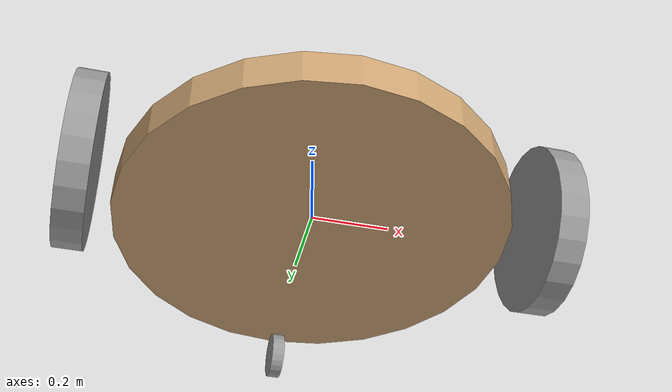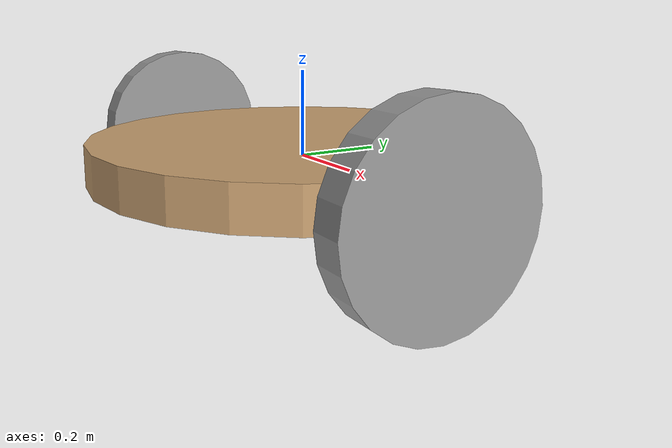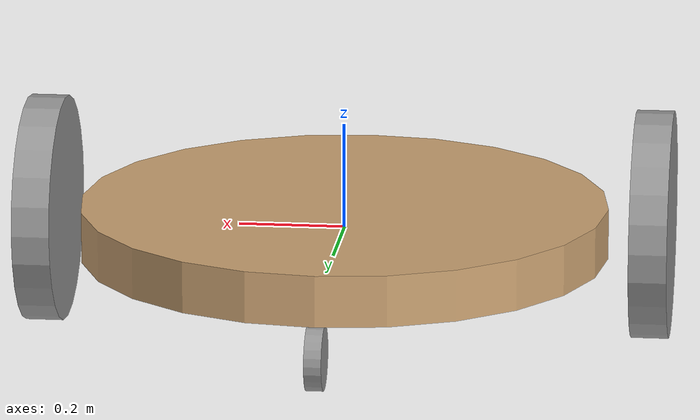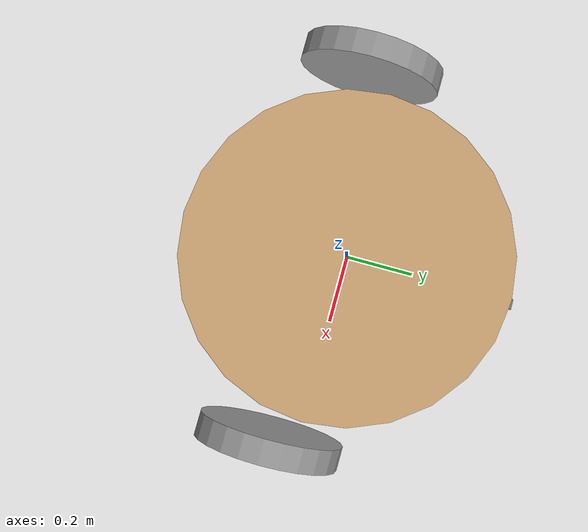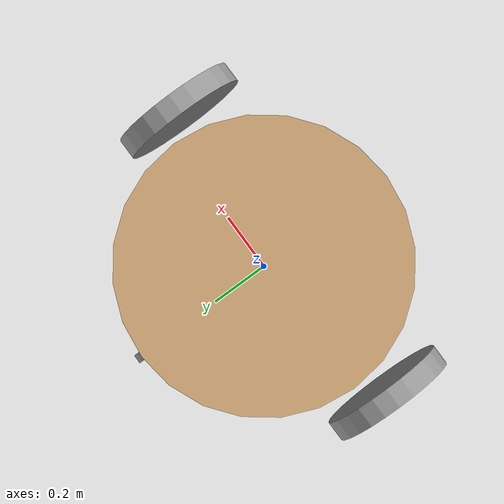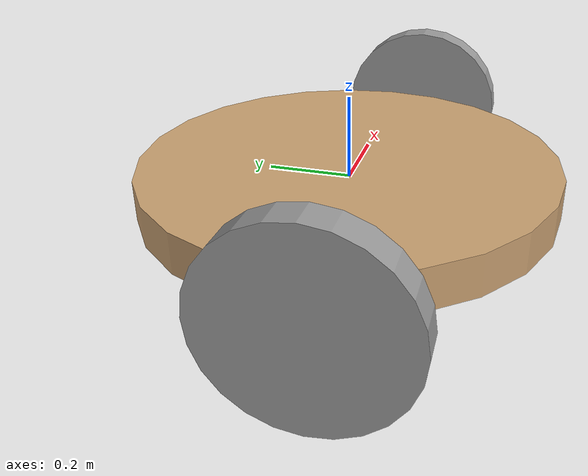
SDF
<?xml version='1.0'?>
<sdf version='1.7'>
  <model name='robot_draft'>
    <link name='caster_wheel'>
      <inertial>
        <mass>2</mass>
        <inertia>
          <ixx>0.00197836</ixx>
          <ixy>0</ixy>
          <ixz>0</ixz>
          <iyy>0.00197836</iyy>
          <iyz>0</iyz>
          <izz>0.00361478</izz>
        </inertia>
        <pose>0 0 0 0 -0 0</pose>
      </inertial>
      <pose>0.001456 0.474958 -0.113119 -3.14042 1.57079 -3.14042</pose>
      <self_collide>0</self_collide>
      <enable_wind>0</enable_wind>
      <kinematic>0</kinematic>
      <gravity>1</gravity>
      <visual name='visual'>
        <pose>0 0 0 0 -0 0</pose>
        <geometry>
          <cylinder>
            <radius>0.0601226</radius>
            <length>0.0320289</length>
          </cylinder>
        </geometry>
        <material>
          <lighting>1</lighting>
          <script>
            <uri>file://media/materials/scripts/gazebo.material</uri>
            <name>Gazebo/Grey</name>
          </script>
          <shader type='pixel'>
            <normal_map>__default__</normal_map>
          </shader>
          <ambient>0.3 0.3 0.3 1</ambient>
          <diffuse>0.7 0.7 0.7 1</diffuse>
          <specular>0.01 0.01 0.01 1</specular>
          <emissive>0 0 0 1</emissive>
        </material>
        <transparency>0</transparency>
        <cast_shadows>1</cast_shadows>
      </visual>
      <collision name='collision'>
        <laser_retro>0</laser_retro>
        <max_contacts>10</max_contacts>
        <pose>0 0 0 0 -0 0</pose>
        <geometry>
          <cylinder>
            <radius>0.060123</radius>
            <length>0.032029</length>
          </cylinder>
        </geometry>
        <surface>
          <friction>
            <ode>
              <mu>1</mu>
              <mu2>1</mu2>
              <fdir1>0 0 0</fdir1>
              <slip1>0</slip1>
              <slip2>0</slip2>
            </ode>
            <torsional>
              <coefficient>1</coefficient>
              <patch_radius>0</patch_radius>
              <surface_radius>0</surface_radius>
              <use_patch_radius>1</use_patch_radius>
              <ode>
                <slip>0</slip>
              </ode>
            </torsional>
          </friction>
          <bounce>
            <restitution_coefficient>0</restitution_coefficient>
            <threshold>1e+06</threshold>
          </bounce>
          <contact>
            <collide_without_contact>0</collide_without_contact>
            <collide_without_contact_bitmask>1</collide_without_contact_bitmask>
            <collide_bitmask>1</collide_bitmask>
            <ode>
              <soft_cfm>0</soft_cfm>
              <soft_erp>0.2</soft_erp>
              <kp>1e+13</kp>
              <kd>1</kd>
              <max_vel>0.01</max_vel>
              <min_depth>0</min_depth>
            </ode>
            <bullet>
              <split_impulse>1</split_impulse>
              <split_impulse_penetration_threshold>-0.01</split_impulse_penetration_threshold>
              <soft_cfm>0</soft_cfm>
              <soft_erp>0.2</soft_erp>
              <kp>1e+13</kp>
              <kd>1</kd>
            </bullet>
          </contact>
        </surface>
      </collision>
    </link>
    <link name='chassis'>
      <inertial>
        <mass>20</mass>
        <inertia>
          <ixx>1.26558</ixx>
          <ixy>0</ixy>
          <ixz>0</ixz>
          <iyy>1.26558</iyy>
          <iyz>0</iyz>
          <izz>2.5</izz>
        </inertia>
        <pose>0 0 0 0 -0 0</pose>
      </inertial>
      <pose>0 0 0 0 -0 0</pose>
      <gravity>1</gravity>
      <self_collide>0</self_collide>
      <kinematic>0</kinematic>
      <enable_wind>0</enable_wind>
      <visual name='visual'>
        <pose>0 0 0 0 -0 0</pose>
        <geometry>
          <cylinder>
            <radius>0.5</radius>
            <length>0.0966706</length>
          </cylinder>
        </geometry>
        <material>
          <lighting>1</lighting>
          <script>
            <uri>file://media/materials/scripts/gazebo.material</uri>
            <name>Gazebo/Grey</name>
          </script>
          <shader type='pixel'>
            <normal_map>__default__</normal_map>
          </shader>
          <ambient>0.8 0.64 0.45 1</ambient>
          <diffuse>0.7 0.7 0.7 1</diffuse>
          <specular>0.01 0.01 0.01 1</specular>
          <emissive>0 0 0 1</emissive>
        </material>
        <transparency>0</transparency>
        <cast_shadows>1</cast_shadows>
      </visual>
      <collision name='collision'>
        <laser_retro>0</laser_retro>
        <max_contacts>10</max_contacts>
        <pose>0 0 0 0 -0 0</pose>
        <geometry>
          <cylinder>
            <radius>0.5</radius>
            <length>0.096671</length>
          </cylinder>
        </geometry>
        <surface>
          <friction>
            <ode>
              <mu>1</mu>
              <mu2>1</mu2>
              <fdir1>0 0 0</fdir1>
              <slip1>0</slip1>
              <slip2>0</slip2>
            </ode>
            <torsional>
              <coefficient>1</coefficient>
              <patch_radius>0</patch_radius>
              <surface_radius>0</surface_radius>
              <use_patch_radius>1</use_patch_radius>
              <ode>
                <slip>0</slip>
              </ode>
            </torsional>
          </friction>
          <bounce>
            <restitution_coefficient>0</restitution_coefficient>
            <threshold>1e+06</threshold>
          </bounce>
          <contact>
            <collide_without_contact>0</collide_without_contact>
            <collide_without_contact_bitmask>1</collide_without_contact_bitmask>
            <collide_bitmask>1</collide_bitmask>
            <ode>
              <soft_cfm>0</soft_cfm>
              <soft_erp>0.2</soft_erp>
              <kp>1e+13</kp>
              <kd>1</kd>
              <max_vel>0.01</max_vel>
              <min_depth>0</min_depth>
            </ode>
            <bullet>
              <split_impulse>1</split_impulse>
              <split_impulse_penetration_threshold>-0.01</split_impulse_penetration_threshold>
              <soft_cfm>0</soft_cfm>
              <soft_erp>0.2</soft_erp>
              <kp>1e+13</kp>
              <kd>1</kd>
            </bullet>
          </contact>
        </surface>
      </collision>
    </link>
    <link name='left_wheel'>
      <inertial>
        <mass>1.5</mass>
        <inertia>
          <ixx>0.0181364</ixx>
          <ixy>0</ixy>
          <ixz>0</ixz>
          <iyy>0.0181364</iyy>
          <iyz>0</iyz>
          <izz>0.0349969</izz>
        </inertia>
        <pose>0 0 0 0 -0 0</pose>
      </inertial>
      <pose>-0.58 -0.08 -0 -3.14042 1.57079 -3.14042</pose>
      <self_collide>0</self_collide>
      <enable_wind>0</enable_wind>
      <kinematic>0</kinematic>
      <gravity>1</gravity>
      <visual name='visual'>
        <pose>0 0 0 0 -0 0</pose>
        <geometry>
          <cylinder>
            <radius>0.216015</radius>
            <length>0.071441</length>
          </cylinder>
        </geometry>
        <material>
          <lighting>1</lighting>
          <script>
            <uri>file://media/materials/scripts/gazebo.material</uri>
            <name>Gazebo/Grey</name>
          </script>
          <shader type='pixel'>
            <normal_map>__default__</normal_map>
          </shader>
          <ambient>0.3 0.3 0.3 1</ambient>
          <diffuse>0.7 0.7 0.7 1</diffuse>
          <specular>0.01 0.01 0.01 1</specular>
          <emissive>0 0 0 1</emissive>
        </material>
        <transparency>0</transparency>
        <cast_shadows>1</cast_shadows>
      </visual>
      <collision name='collision'>
        <laser_retro>0</laser_retro>
        <max_contacts>10</max_contacts>
        <pose>0 0 0 0 -0 0</pose>
        <geometry>
          <cylinder>
            <radius>0.216015</radius>
            <length>0.071441</length>
          </cylinder>
        </geometry>
        <surface>
          <friction>
            <ode>
              <mu>1</mu>
              <mu2>1</mu2>
              <fdir1>0 0 0</fdir1>
              <slip1>0</slip1>
              <slip2>0</slip2>
            </ode>
            <torsional>
              <coefficient>1</coefficient>
              <patch_radius>0</patch_radius>
              <surface_radius>0</surface_radius>
              <use_patch_radius>1</use_patch_radius>
              <ode>
                <slip>0</slip>
              </ode>
            </torsional>
          </friction>
          <bounce>
            <restitution_coefficient>0</restitution_coefficient>
            <threshold>1e+06</threshold>
          </bounce>
          <contact>
            <collide_without_contact>0</collide_without_contact>
            <collide_without_contact_bitmask>1</collide_without_contact_bitmask>
            <collide_bitmask>1</collide_bitmask>
            <ode>
              <soft_cfm>0</soft_cfm>
              <soft_erp>0.2</soft_erp>
              <kp>1e+13</kp>
              <kd>1</kd>
              <max_vel>0.01</max_vel>
              <min_depth>0</min_depth>
            </ode>
            <bullet>
              <split_impulse>1</split_impulse>
              <split_impulse_penetration_threshold>-0.01</split_impulse_penetration_threshold>
              <soft_cfm>0</soft_cfm>
              <soft_erp>0.2</soft_erp>
              <kp>1e+13</kp>
              <kd>1</kd>
            </bullet>
          </contact>
        </surface>
      </collision>
    </link>
    <link name='right_wheel'>
      <inertial>
        <mass>1.5</mass>
        <inertia>
          <ixx>0.0181364</ixx>
          <ixy>0</ixy>
          <ixz>0</ixz>
          <iyy>0.0181364</iyy>
          <iyz>0</iyz>
          <izz>0.0349969</izz>
        </inertia>
        <pose>0 0 0 0 -0 0</pose>
      </inertial>
      <pose>0.58 -0.08 -0 -3.14042 1.57079 -3.14042</pose>
      <self_collide>0</self_collide>
      <enable_wind>0</enable_wind>
      <kinematic>0</kinematic>
      <gravity>1</gravity>
      <visual name='visual'>
        <pose>0 0 0 0 -0 0</pose>
        <geometry>
          <cylinder>
            <radius>0.216015</radius>
            <length>0.071441</length>
          </cylinder>
        </geometry>
        <material>
          <lighting>1</lighting>
          <script>
            <uri>file://media/materials/scripts/gazebo.material</uri>
            <name>Gazebo/Grey</name>
          </script>
          <shader type='pixel'>
            <normal_map>__default__</normal_map>
          </shader>
          <ambient>0.3 0.3 0.3 1</ambient>
          <diffuse>0.7 0.7 0.7 1</diffuse>
          <specular>0.01 0.01 0.01 1</specular>
          <emissive>0 0 0 1</emissive>
        </material>
        <transparency>0</transparency>
        <cast_shadows>1</cast_shadows>
      </visual>
      <collision name='collision'>
        <laser_retro>0</laser_retro>
        <max_contacts>10</max_contacts>
        <pose>0 0 0 0 -0 0</pose>
        <geometry>
          <cylinder>
            <radius>0.216015</radius>
            <length>0.071441</length>
          </cylinder>
        </geometry>
        <surface>
          <friction>
            <ode>
              <mu>1</mu>
              <mu2>1</mu2>
              <fdir1>0 0 0</fdir1>
              <slip1>0</slip1>
              <slip2>0</slip2>
            </ode>
            <torsional>
              <coefficient>1</coefficient>
              <patch_radius>0</patch_radius>
              <surface_radius>0</surface_radius>
              <use_patch_radius>1</use_patch_radius>
              <ode>
                <slip>0</slip>
              </ode>
            </torsional>
          </friction>
          <bounce>
            <restitution_coefficient>0</restitution_coefficient>
            <threshold>1e+06</threshold>
          </bounce>
          <contact>
            <collide_without_contact>0</collide_without_contact>
            <collide_without_contact_bitmask>1</collide_without_contact_bitmask>
            <collide_bitmask>1</collide_bitmask>
            <ode>
              <soft_cfm>0</soft_cfm>
              <soft_erp>0.2</soft_erp>
              <kp>1e+13</kp>
              <kd>1</kd>
              <max_vel>0.01</max_vel>
              <min_depth>0</min_depth>
            </ode>
            <bullet>
              <split_impulse>1</split_impulse>
              <split_impulse_penetration_threshold>-0.01</split_impulse_penetration_threshold>
              <soft_cfm>0</soft_cfm>
              <soft_erp>0.2</soft_erp>
              <kp>1e+13</kp>
              <kd>1</kd>
            </bullet>
          </contact>
        </surface>
      </collision>
    </link>
    <joint name='caster_wheel_joint' type='revolute'>
      <parent>chassis</parent>
      <child>caster_wheel</child>
      <pose>0 0 0 0 -0 0</pose>
      <axis>
        <xyz>0 0 -1</xyz>
        <limit>
          <lower>-1.79769e+308</lower>
          <upper>1.79769e+308</upper>
          <effort>-1</effort>
          <velocity>-1</velocity>
        </limit>
        <dynamics>
          <spring_reference>0</spring_reference>
          <spring_stiffness>0</spring_stiffness>
          <damping>0</damping>
          <friction>0</friction>
        </dynamics>
      </axis>
      <physics>
        <ode>
          <limit>
            <cfm>0</cfm>
            <erp>0.2</erp>
          </limit>
          <suspension>
            <cfm>0</cfm>
            <erp>0.2</erp>
          </suspension>
        </ode>
      </physics>
    </joint>
    <joint name='left_wheel_joint' type='revolute'>
      <parent>chassis</parent>
      <child>left_wheel</child>
      <pose>0 0 0 0 -0 0</pose>
      <axis>
        <xyz>0 0 -1</xyz>
        <limit>
          <lower>-1.79769e+308</lower>
          <upper>1.79769e+308</upper>
          <effort>-1</effort>
          <velocity>-1</velocity>
        </limit>
        <dynamics>
          <spring_reference>0</spring_reference>
          <spring_stiffness>0</spring_stiffness>
          <damping>0</damping>
          <friction>0</friction>
        </dynamics>
      </axis>
      <physics>
        <ode>
          <limit>
            <cfm>0</cfm>
            <erp>0.2</erp>
          </limit>
          <suspension>
            <cfm>0</cfm>
            <erp>0.2</erp>
          </suspension>
        </ode>
      </physics>
    </joint>
    <joint name='right_wheel_joint' type='revolute'>
      <parent>chassis</parent>
      <child>right_wheel</child>
      <pose>0 0 0 0 -0 0</pose>
      <axis>
        <xyz>0 0 -1</xyz>
        <limit>
          <lower>-1.79769e+308</lower>
          <upper>1.79769e+308</upper>
          <effort>-1</effort>
          <velocity>-1</velocity>
        </limit>
        <dynamics>
          <spring_reference>0</spring_reference>
          <spring_stiffness>0</spring_stiffness>
          <damping>0</damping>
          <friction>0</friction>
        </dynamics>
      </axis>
      <physics>
        <ode>
          <limit>
            <cfm>0</cfm>
            <erp>0.2</erp>
          </limit>
          <suspension>
            <cfm>0</cfm>
            <erp>0.2</erp>
          </suspension>
        </ode>
      </physics>
    </joint>
    <static>0</static>
    <allow_auto_disable>1</allow_auto_disable>
    <plugin name='velocity_setter' filename='libwheel_velocity_setter.so'/>
  </model>
</sdf>
